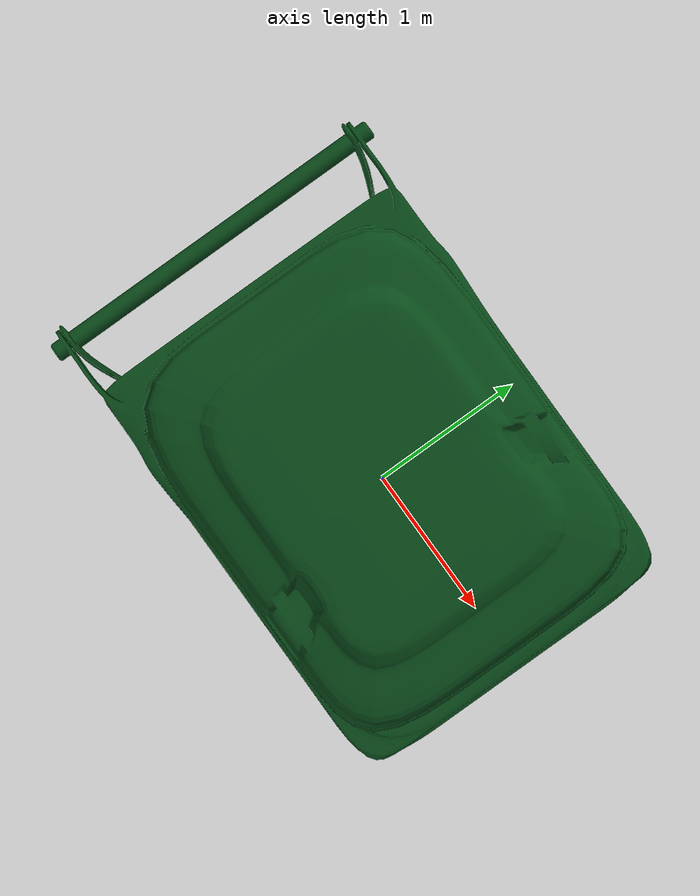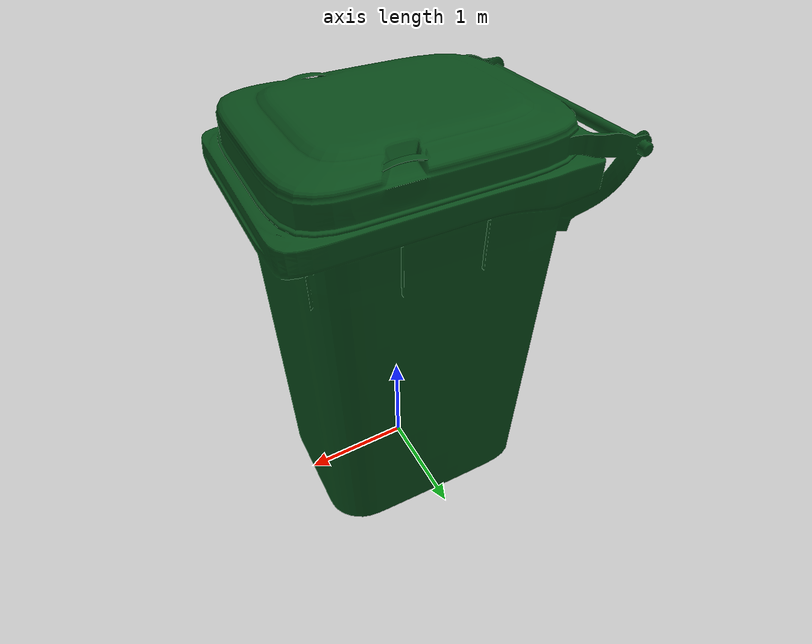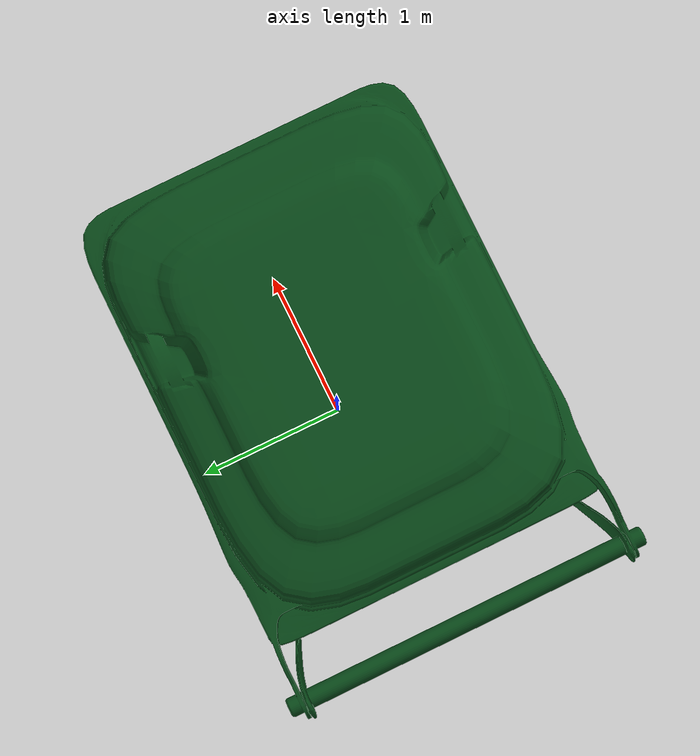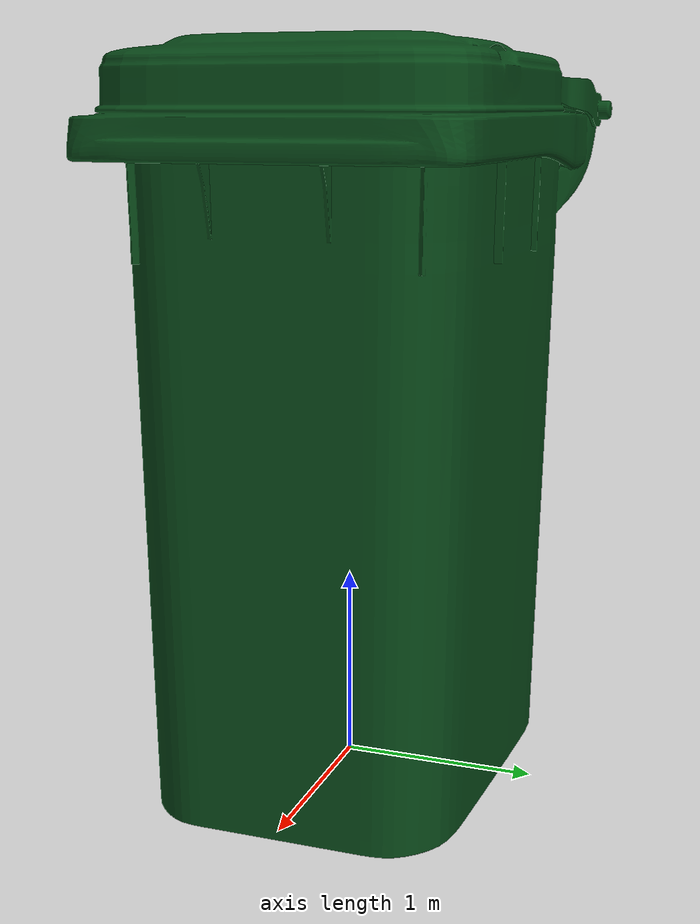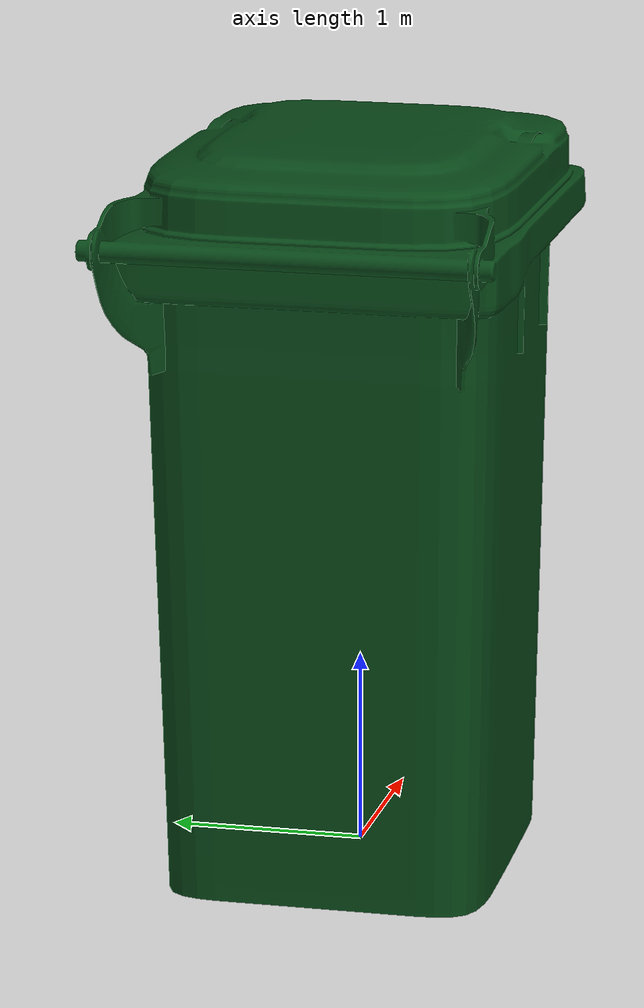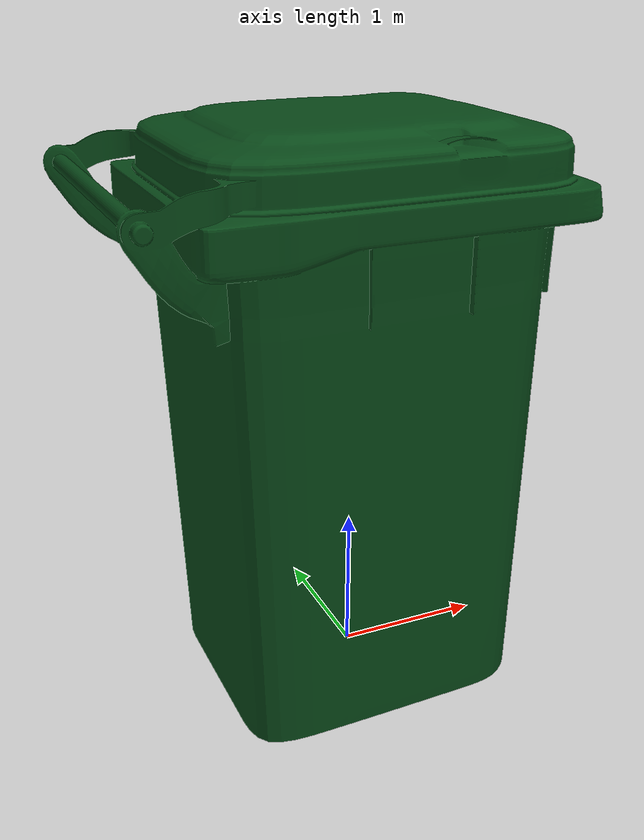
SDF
<?xml version="1.0" ?>
<sdf version="1.5">
  <model name="wheelie_bin">
    <link name="link">
      <collision name="collision">
        <geometry>
          <mesh>
            <scale>0.75 0.75 0.75</scale>
            <uri>model://wheelie_bin/wheelie_bin.stl</uri>
          </mesh>
        </geometry>
      </collision>
      <visual name="visual">
        <geometry>
          <mesh>
            <scale>0.75 0.75 0.75</scale>
            <uri>model://wheelie_bin/wheelie_bin.stl</uri>
          </mesh>
        </geometry>
        <material>
          <ambient>0.035 0.29 0.10 1</ambient>
          <diffuse>0.035 0.29 0.10 1</diffuse>
          <specular>0.035 0.29 0.10 1</specular>
        </material>
      </visual>
    </link>
  </model>
</sdf>
